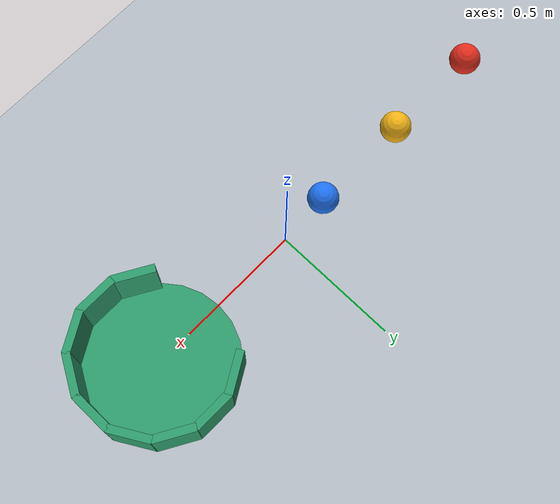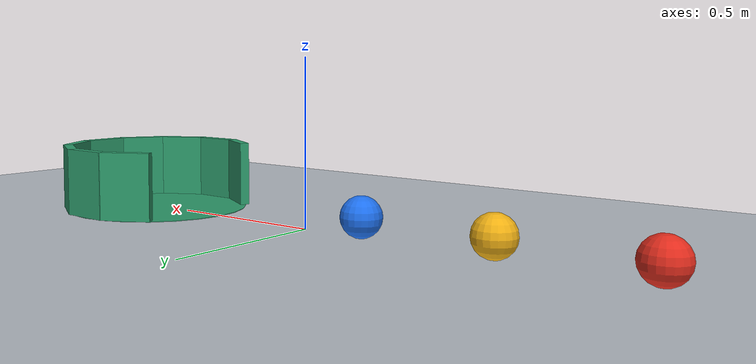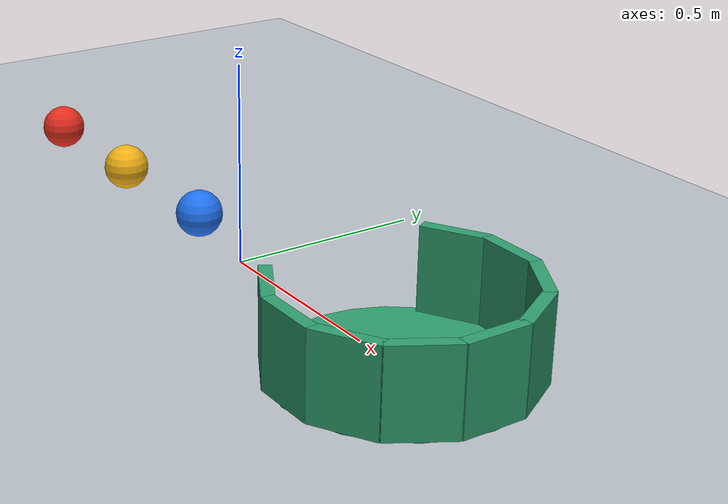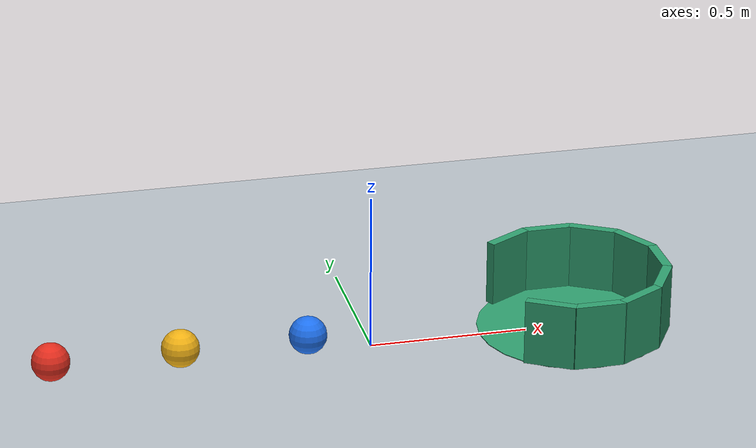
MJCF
<mujoco model="three_balls_into_cup">
  <compiler angle="degree"/>
  <option timestep="0.002" gravity="0 0 -9.81" integrator="implicitfast" cone="elliptic" iterations="80"/>
  <size njmax="1000" nconmax="200"/>

  <visual>
    <headlight ambient="0.35 0.35 0.35" diffuse="0.7 0.7 0.7" specular="0.2 0.2 0.2"/>
  </visual>

  <worldbody>
    <light name="overhead" pos="0 -2 4" dir="0 0.4 -1" directional="true"/>
    <camera name="overview" pos="-0.05 -2.8 2" xyaxes="1 0 0 0 0.57 0.82"/>

    <geom name="floor" type="plane" pos="0 0 0" size="3 2 0.1" rgba="0.72 0.75 0.78 1" condim="6" friction="0.6 0.005 0.0008" priority="1" solref="0.01 1" solimp="0.95 0.99 0.001"/>

    <body name="ball1" pos="-1 0 0.06">
      <freejoint name="ball1_free"/>
      <geom name="ball1_sphere" type="sphere" size="0.06" mass="0.16" rgba="0.9 0.18 0.12 1" condim="6" friction="0.02 0.0001 0.0001" solref="0.02 0.2" solimp="0.95 0.99 0.001"/>
    </body>

    <body name="ball2" pos="-0.6 0 0.06">
      <freejoint name="ball2_free"/>
      <geom name="ball2_sphere" type="sphere" size="0.06" mass="0.16" rgba="0.95 0.7 0.08 1" condim="6" friction="0.02 0.0001 0.0001" solref="0.02 0.2" solimp="0.95 0.99 0.001"/>
    </body>

    <body name="ball3" pos="-0.2 0 0.06">
      <freejoint name="ball3_free"/>
      <geom name="ball3_sphere" type="sphere" size="0.06" mass="0.16" rgba="0.12 0.45 0.95 1" condim="6" friction="0.02 0.0001 0.0001" solref="0.02 0.2" solimp="0.95 0.99 0.001"/>
    </body>

    <!-- A receiving cup with a floor-level entrance on its negative-x side. -->
    <body name="cup" pos="0.65 0 0">
      <geom name="cup_bottom" type="cylinder" pos="0 0 -0.015" size="0.30 0.015" rgba="0.18 0.62 0.43 1" condim="6" friction="0.8 0.006 0.008" priority="2" solref="0.015 1" solimp="0.95 0.99 0.001"/>
      <geom name="cup_wall_0" type="box" pos="0.285 0 0.105" size="0.015 0.079 0.105" rgba="0.18 0.62 0.43 1" condim="6" friction="0.8 0.006 0.008" priority="2" solref="0.015 1"/>
      <geom name="cup_wall_30" type="box" pos="0.246817 0.1425 0.105" euler="0 0 30" size="0.015 0.079 0.105" rgba="0.18 0.62 0.43 1" condim="6" friction="0.8 0.006 0.008" priority="2" solref="0.015 1"/>
      <geom name="cup_wall_60" type="box" pos="0.1425 0.246817 0.105" euler="0 0 60" size="0.015 0.079 0.105" rgba="0.18 0.62 0.43 1" condim="6" friction="0.8 0.006 0.008" priority="2" solref="0.015 1"/>
      <geom name="cup_wall_90" type="box" pos="0 0.285 0.105" euler="0 0 90" size="0.015 0.079 0.105" rgba="0.18 0.62 0.43 1" condim="6" friction="0.8 0.006 0.008" priority="2" solref="0.015 1"/>
      <geom name="cup_wall_120" type="box" pos="-0.1425 0.246817 0.105" euler="0 0 120" size="0.015 0.079 0.105" rgba="0.18 0.62 0.43 1" condim="6" friction="0.8 0.006 0.008" priority="2" solref="0.015 1"/>
      <geom name="cup_wall_240" type="box" pos="-0.1425 -0.246817 0.105" euler="0 0 240" size="0.015 0.079 0.105" rgba="0.18 0.62 0.43 1" condim="6" friction="0.8 0.006 0.008" priority="2" solref="0.015 1"/>
      <geom name="cup_wall_270" type="box" pos="0 -0.285 0.105" euler="0 0 270" size="0.015 0.079 0.105" rgba="0.18 0.62 0.43 1" condim="6" friction="0.8 0.006 0.008" priority="2" solref="0.015 1"/>
      <geom name="cup_wall_300" type="box" pos="0.1425 -0.246817 0.105" euler="0 0 300" size="0.015 0.079 0.105" rgba="0.18 0.62 0.43 1" condim="6" friction="0.8 0.006 0.008" priority="2" solref="0.015 1"/>
      <geom name="cup_wall_330" type="box" pos="0.246817 -0.1425 0.105" euler="0 0 330" size="0.015 0.079 0.105" rgba="0.18 0.62 0.43 1" condim="6" friction="0.8 0.006 0.008" priority="2" solref="0.015 1"/>
    </body>
  </worldbody>

  <keyframe>
    <key name="start" qpos="-1 0 0.06 1 0 0 0 -0.6 0 0.06 1 0 0 0 -0.2 0 0.06 1 0 0 0" qvel="2.4 0 0 0 40 0 0 0 0 0 0 0 0 0 0 0 0 0"/>
  </keyframe>
</mujoco>
